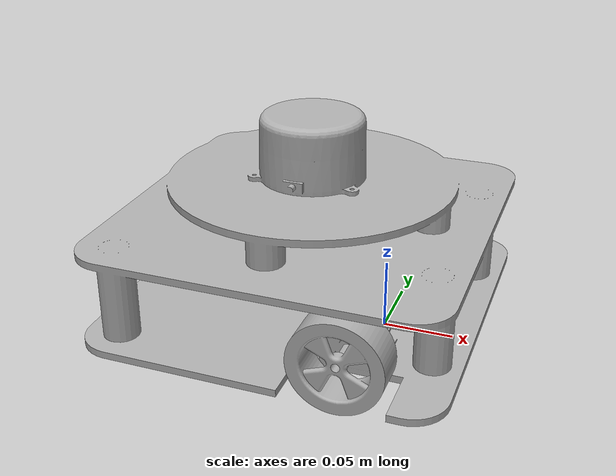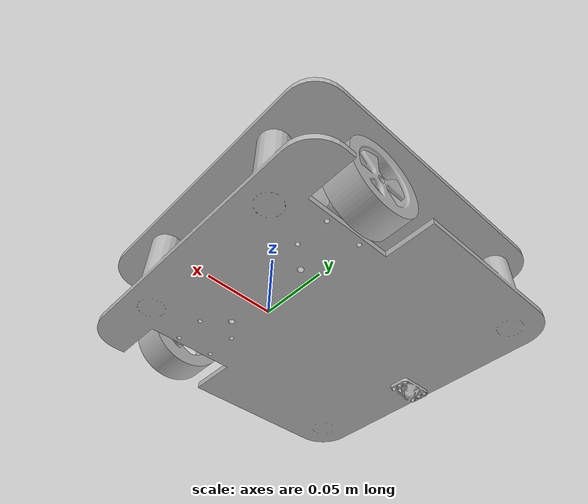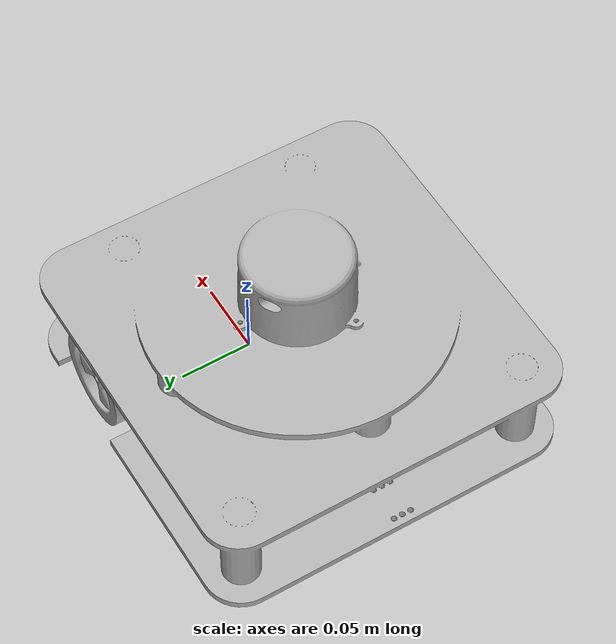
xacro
<?xml version="1.0" ?>
<robot name="bmk_mobile" xmlns:xacro="http://www.ros.org/wiki/xacro">

<xacro:include filename="$(find bmk_mobile_description)/urdf/materials.xacro" />
<xacro:include filename="$(find bmk_mobile_description)/urdf/bmk_mobile.trans" />
<xacro:include filename="$(find bmk_mobile_description)/urdf/bmk_mobile.gazebo" />

  <!-- Robot Footprint -->
<link name="base_footprint">
  <inertial>
    <origin xyz="0.0 0.0 0.0" rpy="0 0 0"/>
    <mass value="9.532950444376354"/>
    <inertia ixx="0.053224" iyy="0.057589" izz="0.079192" ixy="-1e-05" iyz="-5.4e-05" ixz="-0.001041"/>
  </inertial>
</link>

<joint name="base_joint" type="fixed">
  <parent link="base_footprint"/>
  <child link="base_link"/>
  <origin xyz="-0.055 0.0 0.0" rpy="0 0 3.14"/>
</joint>

<link name="base_link">
  <inertial>
    <origin xyz="-0.0058813901742914435 0.0053966335558118675 0.0728458714438745" rpy="0 0 0"/>
    <mass value="9.532950444376354"/>
    <inertia ixx="0.053224" iyy="0.057589" izz="0.079192" ixy="-1e-05" iyz="-5.4e-05" ixz="-0.001041"/>
  </inertial>
  <visual>
    <origin xyz="0 0 0" rpy="0 0 0"/>
    <geometry>
      <mesh filename="file://$(find bmk_mobile_description)/meshes/base_link.stl" scale="0.001 0.001 0.001"/>
    </geometry>
    <material name="silver"/>
  </visual>
  <collision>
    <origin xyz="0 0 0" rpy="0 0 0"/>
    <geometry>
      <mesh filename="file://$(find bmk_mobile_description)/meshes/base_link.stl" scale="0.001 0.001 0.001"/>
    </geometry>
  </collision>
</link>

<link name="right_wheel_link">
  <inertial>
    <origin xyz="1.6805156917432118e-07 0.0015196867190130359 2.5146885997140433e-07" rpy="0 0 0"/>
    <mass value="0.35418150801994014"/>
    <inertia ixx="0.000149" iyy="0.000258" izz="0.000149" ixy="0.0" iyz="-0.0" ixz="-0.0"/>
  </inertial>
  <visual>
    <origin xyz="0.057696 0.101448 -0.040112" rpy="0 0 0"/>
    <geometry>
      <mesh filename="file://$(find bmk_mobile_description)/meshes/right_wheel_1_1.stl" scale="0.001 0.001 0.001"/>
    </geometry>
    <material name="silver"/>
  </visual>
  <collision>
    <origin xyz="0.057696 0.101448 -0.040112" rpy="0 0 0"/>
    <geometry>
      <mesh filename="file://$(find bmk_mobile_description)/meshes/right_wheel_1_1.stl" scale="0.001 0.001 0.001"/>
    </geometry>
  </collision>
</link>

<link name="left_wheel_link">
  <inertial>
    <origin xyz="1.6805157334459642e-07 -0.0015205283680475856 2.5146885734850244e-07" rpy="0 0 0"/>
    <mass value="0.3541814925935414"/>
    <inertia ixx="0.000149" iyy="0.000258" izz="0.000149" ixy="0.0" iyz="-0.0" ixz="-0.0"/>
  </inertial>
  <visual>
    <origin xyz="0.057696 -0.112052 -0.040112" rpy="0 0 0"/>
    <geometry>
      <mesh filename="file://$(find bmk_mobile_description)/meshes/left_wheel_1_1.stl" scale="0.001 0.001 0.001"/>
    </geometry>
    <material name="silver"/>
  </visual>
  <collision>
    <origin xyz="0.057696 -0.112052 -0.040112" rpy="0 0 0"/>
    <geometry>
      <mesh filename="file://$(find bmk_mobile_description)/meshes/left_wheel_1_1.stl" scale="0.001 0.001 0.001"/>
    </geometry>
  </collision>
</link>

<joint name="left_wheel_joint" type="continuous">
  <origin xyz="-0.057696 -0.101448 0.040112" rpy="0 0 0"/>
  <parent link="base_link"/>
  <child link="right_wheel_link"/>
  <axis xyz="-0.0 -1.0 0.0"/>
</joint>

<joint name="right_wheel_joint" type="continuous">
  <origin xyz="-0.057696 0.112052 0.040112" rpy="0 0 0"/>
  <parent link="base_link"/>
  <child link="left_wheel_link"/>
  <axis xyz="-0.0 1.0 -0.0"/>
</joint>

</robot>

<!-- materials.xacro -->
<robot name="bmk_mobile" xmlns:xacro="http://www.ros.org/wiki/xacro" >

<material name="silver">
  <color rgba="0.700 0.700 0.700 1.000"/>
</material>

</robot>

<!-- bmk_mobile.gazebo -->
<robot name="bmk_mobile" xmlns:xacro="http://www.ros.org/wiki/xacro" >

<xacro:property name="body_color" value="Gazebo/Silver" />

<gazebo>
  <plugin name="control" filename="libgazebo_ros_control.so"/>
</gazebo>
<gazebo reference="base_link">
  <material>${body_color}</material>
  <mu1>0.2</mu1>
  <mu2>0.2</mu2>
  <self_collide>true</self_collide>
  <gravity>true</gravity>
</gazebo>

<gazebo reference="right_wheel_link">
  <material>${body_color}</material>
  <mu1>0.2</mu1>
  <mu2>0.2</mu2>
  <self_collide>true</self_collide>
</gazebo>

<gazebo reference="left_wheel_link">
  <material>${body_color}</material>
  <mu1>0.2</mu1>
  <mu2>0.2</mu2>
  <self_collide>true</self_collide>
</gazebo>

</robot>
